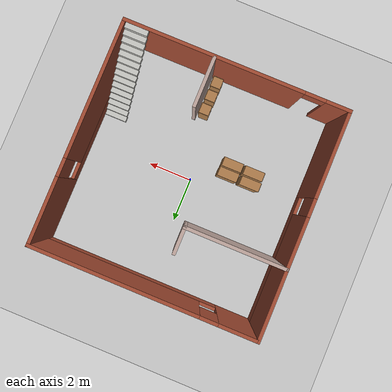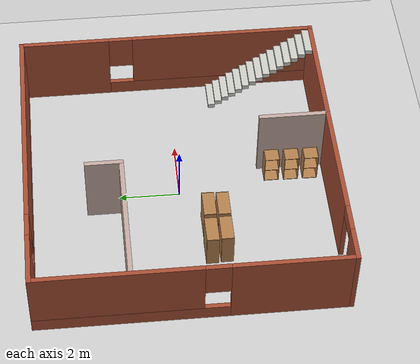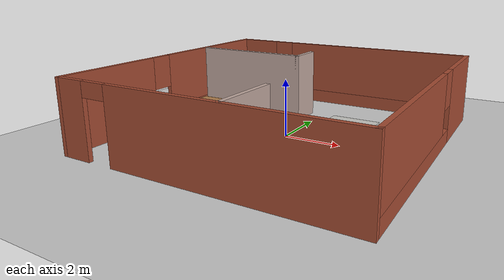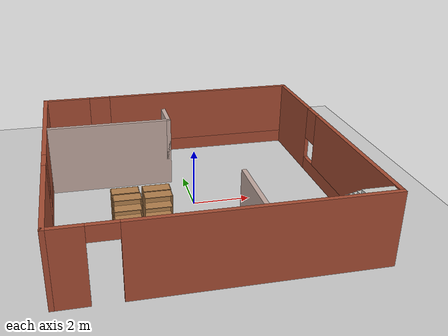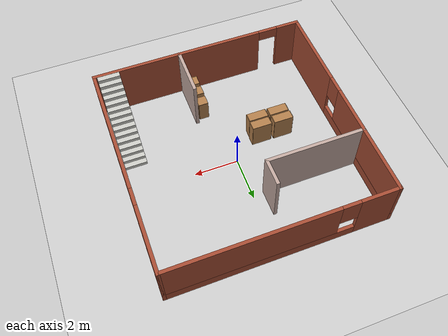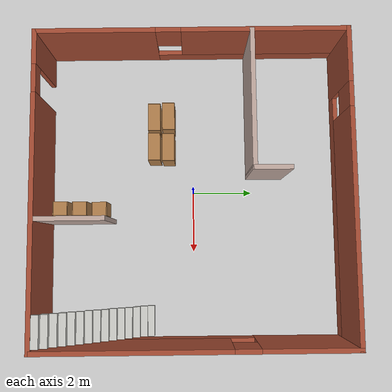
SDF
<sdf version="1.6">
 <world name="default">
  <light name="sun" type="directional">
   <pose>100 0 10 0 -0 0</pose>
   <diffuse>0.8 0.8 0.8 1</diffuse>
   <specular>0.1 0.1 0.1 1</specular>
   <attenuation>
    <range>1000</range>
    <constant>0.9</constant>
    <linear>0.01</linear>
    <quadratic>0.001</quadratic>
   </attenuation>
   <direction>-0.5 0.5 -1</direction>
  </light>
  <model name="ground_plane">
   <static>1</static>
   <link name="link">
    <collision name="collision">
     <geometry><plane><normal>0 0 1</normal><size>100 100</size></plane></geometry>
     <surface><friction><ode><mu>100</mu><mu2>50</mu2></ode></friction></surface>
    </collision>
    <visual name="visual">
     <cast_shadows>0</cast_shadows>
     <geometry><plane><normal>0 0 1</normal><size>100 100</size></plane></geometry>
     <material>
      <script><uri>file://media/materials/scripts/gazebo.material</uri><name>Gazebo/Grey</name></script>
     </material>
    </visual>
   </link>
  </model>
  <gravity>0 0 -9.8</gravity>
  <magnetic_field>6e-06 2.3e-05 -4.2e-05</magnetic_field>
  <atmosphere type="adiabatic"/>
  <physics name="default_physics" default="0" type="ode">
   <max_step_size>0.001</max_step_size>
   <real_time_factor>1</real_time_factor>
   <real_time_update_rate>2000</real_time_update_rate>
  </physics>
  <scene><ambient>0.4 0.4 0.4 1</ambient><background>0.7 0.7 0.7 1</background><shadows>0</shadows></scene>
  <spherical_coordinates>
   <surface_model>EARTH_WGS84</surface_model>
   <latitude_deg>0</latitude_deg>
   <longitude_deg>0</longitude_deg>
   <elevation>0</elevation>
   <heading_deg>0</heading_deg>
  </spherical_coordinates>
  <model name="house2">
   <pose>-0.000158 0.001701 0 0 -0 0</pose>
   <link name="Stairs_0">
    <visual name="Stairs_0_Visual_0">
     <pose>4.30411 -1.46435 0.083333 0 -0 0</pose>
     <geometry><box><size>1 0.233333 0.166667</size></box></geometry>
     <material>
      <script><uri>file://media/materials/scripts/gazebo.material</uri><name>Gazebo/CeilingTiled</name></script>
      <ambient>1 1 1 1</ambient>
     </material>
    </visual>
    <collision name="Stairs_0_Collision_0">
     <geometry><box><size>1 0.233333 0.166667</size></box></geometry>
     <pose>4.30411 -1.46435 0.083333 0 -0 0</pose>
    </collision>
    <visual name="Stairs_0_Visual_1">
     <pose>4.30411 -1.69768 0.25 0 -0 0</pose>
     <geometry><box><size>1 0.233333 0.166667</size></box></geometry>
     <material>
      <script><uri>file://media/materials/scripts/gazebo.material</uri><name>Gazebo/CeilingTiled</name></script>
      <ambient>1 1 1 1</ambient>
     </material>
    </visual>
    <collision name="Stairs_0_Collision_1">
     <geometry><box><size>1 0.233333 0.166667</size></box></geometry>
     <pose>4.30411 -1.69768 0.25 0 -0 0</pose>
    </collision>
    <visual name="Stairs_0_Visual_2">
     <pose>4.30411 -1.93101 0.416667 0 -0 0</pose>
     <geometry><box><size>1 0.233333 0.166667</size></box></geometry>
     <material>
      <script><uri>file://media/materials/scripts/gazebo.material</uri><name>Gazebo/CeilingTiled</name></script>
      <ambient>1 1 1 1</ambient>
     </material>
    </visual>
    <collision name="Stairs_0_Collision_2">
     <geometry><box><size>1 0.233333 0.166667</size></box></geometry>
     <pose>4.30411 -1.93101 0.416667 0 -0 0</pose>
    </collision>
    <visual name="Stairs_0_Visual_3">
     <pose>4.30411 -2.16435 0.583333 0 -0 0</pose>
     <geometry><box><size>1 0.233333 0.166667</size></box></geometry>
     <material>
      <script><uri>file://media/materials/scripts/gazebo.material</uri><name>Gazebo/CeilingTiled</name></script>
      <ambient>1 1 1 1</ambient>
     </material>
    </visual>
    <collision name="Stairs_0_Collision_3">
     <geometry><box><size>1 0.233333 0.166667</size></box></geometry>
     <pose>4.30411 -2.16435 0.583333 0 -0 0</pose>
    </collision>
    <visual name="Stairs_0_Visual_4">
     <pose>4.30411 -2.39768 0.75 0 -0 0</pose>
     <geometry><box><size>1 0.233333 0.166667</size></box></geometry>
     <material>
      <script><uri>file://media/materials/scripts/gazebo.material</uri><name>Gazebo/CeilingTiled</name></script>
      <ambient>1 1 1 1</ambient>
     </material>
    </visual>
    <collision name="Stairs_0_Collision_4">
     <geometry><box><size>1 0.233333 0.166667</size></box></geometry>
     <pose>4.30411 -2.39768 0.75 0 -0 0</pose>
    </collision>
    <visual name="Stairs_0_Visual_5">
     <pose>4.30411 -2.63102 0.916667 0 -0 0</pose>
     <geometry><box><size>1 0.233333 0.166667</size></box></geometry>
     <material>
      <script><uri>file://media/materials/scripts/gazebo.material</uri><name>Gazebo/CeilingTiled</name></script>
      <ambient>1 1 1 1</ambient>
     </material>
    </visual>
    <collision name="Stairs_0_Collision_5">
     <geometry><box><size>1 0.233333 0.166667</size></box></geometry>
     <pose>4.30411 -2.63102 0.916667 0 -0 0</pose>
    </collision>
    <visual name="Stairs_0_Visual_6">
     <pose>4.30411 -2.86435 1.08333 0 -0 0</pose>
     <geometry><box><size>1 0.233333 0.166667</size></box></geometry>
     <material>
      <script><uri>file://media/materials/scripts/gazebo.material</uri><name>Gazebo/CeilingTiled</name></script>
      <ambient>1 1 1 1</ambient>
     </material>
    </visual>
    <collision name="Stairs_0_Collision_6">
     <geometry><box><size>1 0.233333 0.166667</size></box></geometry>
     <pose>4.30411 -2.86435 1.08333 0 -0 0</pose>
    </collision>
    <visual name="Stairs_0_Visual_7">
     <pose>4.30411 -3.09768 1.25 0 -0 0</pose>
     <geometry><box><size>1 0.233333 0.166667</size></box></geometry>
     <material>
      <script><uri>file://media/materials/scripts/gazebo.material</uri><name>Gazebo/CeilingTiled</name></script>
      <ambient>1 1 1 1</ambient>
     </material>
    </visual>
    <collision name="Stairs_0_Collision_7">
     <geometry><box><size>1 0.233333 0.166667</size></box></geometry>
     <pose>4.30411 -3.09768 1.25 0 -0 0</pose>
    </collision>
    <visual name="Stairs_0_Visual_8">
     <pose>4.30411 -3.33102 1.41667 0 -0 0</pose>
     <geometry><box><size>1 0.233333 0.166667</size></box></geometry>
     <material>
      <script><uri>file://media/materials/scripts/gazebo.material</uri><name>Gazebo/CeilingTiled</name></script>
      <ambient>1 1 1 1</ambient>
     </material>
    </visual>
    <collision name="Stairs_0_Collision_8">
     <geometry><box><size>1 0.233333 0.166667</size></box></geometry>
     <pose>4.30411 -3.33102 1.41667 0 -0 0</pose>
    </collision>
    <visual name="Stairs_0_Visual_9">
     <pose>4.30411 -3.56435 1.58333 0 -0 0</pose>
     <geometry><box><size>1 0.233333 0.166667</size></box></geometry>
     <material>
      <script><uri>file://media/materials/scripts/gazebo.material</uri><name>Gazebo/CeilingTiled</name></script>
      <ambient>1 1 1 1</ambient>
     </material>
    </visual>
    <collision name="Stairs_0_Collision_9">
     <geometry><box><size>1 0.233333 0.166667</size></box></geometry>
     <pose>4.30411 -3.56435 1.58333 0 -0 0</pose>
    </collision>
    <visual name="Stairs_0_Visual_10">
     <pose>4.30411 -3.79768 1.75 0 -0 0</pose>
     <geometry><box><size>1 0.233333 0.166667</size></box></geometry>
     <material>
      <script><uri>file://media/materials/scripts/gazebo.material</uri><name>Gazebo/CeilingTiled</name></script>
      <ambient>1 1 1 1</ambient>
     </material>
    </visual>
    <collision name="Stairs_0_Collision_10">
     <geometry><box><size>1 0.233333 0.166667</size></box></geometry>
     <pose>4.30411 -3.79768 1.75 0 -0 0</pose>
    </collision>
    <visual name="Stairs_0_Visual_11">
     <pose>4.30411 -4.03102 1.91667 0 -0 0</pose>
     <geometry><box><size>1 0.233333 0.166667</size></box></geometry>
     <material>
      <script><uri>file://media/materials/scripts/gazebo.material</uri><name>Gazebo/CeilingTiled</name></script>
      <ambient>1 1 1 1</ambient>
     </material>
    </visual>
    <collision name="Stairs_0_Collision_11">
     <geometry><box><size>1 0.233333 0.166667</size></box></geometry>
     <pose>4.30411 -4.03102 1.91667 0 -0 0</pose>
    </collision>
    <visual name="Stairs_0_Visual_12">
     <pose>4.30411 -4.26435 2.08333 0 -0 0</pose>
     <geometry><box><size>1 0.233333 0.166667</size></box></geometry>
     <material>
      <script><uri>file://media/materials/scripts/gazebo.material</uri><name>Gazebo/CeilingTiled</name></script>
      <ambient>1 1 1 1</ambient>
     </material>
    </visual>
    <collision name="Stairs_0_Collision_12">
     <geometry><box><size>1 0.233333 0.166667</size></box></geometry>
     <pose>4.30411 -4.26435 2.08333 0 -0 0</pose>
    </collision>
    <visual name="Stairs_0_Visual_13">
     <pose>4.30411 -4.49768 2.25 0 -0 0</pose>
     <geometry><box><size>1 0.233333 0.166667</size></box></geometry>
     <material>
      <script><uri>file://media/materials/scripts/gazebo.material</uri><name>Gazebo/CeilingTiled</name></script>
      <ambient>1 1 1 1</ambient>
     </material>
    </visual>
    <collision name="Stairs_0_Collision_13">
     <geometry><box><size>1 0.233333 0.166667</size></box></geometry>
     <pose>4.30411 -4.49768 2.25 0 -0 0</pose>
    </collision>
    <visual name="Stairs_0_Visual_14">
     <pose>4.30411 -4.73102 2.41667 0 -0 0</pose>
     <geometry><box><size>1 0.233333 0.166667</size></box></geometry>
     <material>
      <script><uri>file://media/materials/scripts/gazebo.material</uri><name>Gazebo/CeilingTiled</name></script>
      <ambient>1 1 1 1</ambient>
     </material>
    </visual>
    <collision name="Stairs_0_Collision_14">
     <geometry><box><size>1 0.233333 0.166667</size></box></geometry>
     <pose>4.30411 -4.73102 2.41667 0 -0 0</pose>
    </collision>
   </link>
   <link name="Wall_1">
    <pose>-4.925 0 0 0 -0 1.5708</pose>
    <visual name="Wall_1_Visual_0">
     <pose>-3.06918 0 1.25 0 -0 0</pose>
     <geometry><box><size>3.86164 0.15 2.5</size></box></geometry>
     <material>
      <script><uri>file://media/materials/scripts/gazebo.material</uri><name>Gazebo/Bricks</name></script>
      <ambient>1 1 1 1</ambient>
     </material>
    </visual>
    <collision name="Wall_1_Collision_0">
     <geometry><box><size>3.86164 0.15 2.5</size></box></geometry>
     <pose>-3.06918 0 1.25 0 -0 0</pose>
    </collision>
    <visual name="Wall_1_Visual_1">
     <pose>1.93082 0 0.25 0 -0 0</pose>
     <geometry><box><size>6.13836 0.15 0.5</size></box></geometry>
     <material>
      <script><uri>file://media/materials/scripts/gazebo.material</uri><name>Gazebo/Bricks</name></script>
      <ambient>1 1 1 1</ambient>
     </material>
    </visual>
    <collision name="Wall_1_Collision_1">
     <geometry><box><size>6.13836 0.15 0.5</size></box></geometry>
     <pose>1.93082 0 0.25 0 -0 0</pose>
    </collision>
    <visual name="Wall_1_Visual_2">
     <pose>2.33082 0 1.5 0 -0 0</pose>
     <geometry><box><size>5.33836 0.15 2</size></box></geometry>
     <material>
      <script><uri>file://media/materials/scripts/gazebo.material</uri><name>Gazebo/Bricks</name></script>
      <ambient>1 1 1 1</ambient>
     </material>
    </visual>
    <collision name="Wall_1_Collision_2">
     <geometry><box><size>5.33836 0.15 2</size></box></geometry>
     <pose>2.33082 0 1.5 0 -0 0</pose>
    </collision>
    <visual name="Wall_1_Visual_3">
     <pose>-0.73836 0 1.9 0 -0 0</pose>
     <geometry><box><size>0.8 0.15 1.2</size></box></geometry>
     <material>
      <script><uri>file://media/materials/scripts/gazebo.material</uri><name>Gazebo/Bricks</name></script>
      <ambient>1 1 1 1</ambient>
     </material>
    </visual>
    <collision name="Wall_1_Collision_3">
     <geometry><box><size>0.8 0.15 1.2</size></box></geometry>
     <pose>-0.73836 0 1.9 0 -0 0</pose>
    </collision>
   </link>
   <link name="Wall_2">
    <pose>0 4.925 0 0 -0 0</pose>
    <visual name="Wall_2_Visual_0">
     <pose>-4.11006 0 1.25 0 -0 0</pose>
     <geometry><box><size>1.77988 0.15 2.5</size></box></geometry>
     <material>
      <script><uri>file://media/materials/scripts/gazebo.material</uri><name>Gazebo/Bricks</name></script>
      <ambient>1 1 1 1</ambient>
     </material>
    </visual>
    <collision name="Wall_2_Collision_0">
     <geometry><box><size>1.77988 0.15 2.5</size></box></geometry>
     <pose>-4.11006 0 1.25 0 -0 0</pose>
    </collision>
    <visual name="Wall_2_Visual_1">
     <pose>0.889943 0 0.25 0 -0 0</pose>
     <geometry><box><size>8.22011 0.15 0.5</size></box></geometry>
     <material>
      <script><uri>file://media/materials/scripts/gazebo.material</uri><name>Gazebo/Bricks</name></script>
      <ambient>1 1 1 1</ambient>
     </material>
    </visual>
    <collision name="Wall_2_Collision_1">
     <geometry><box><size>8.22011 0.15 0.5</size></box></geometry>
     <pose>0.889943 0 0.25 0 -0 0</pose>
    </collision>
    <visual name="Wall_2_Visual_2">
     <pose>1.28994 0 1.5 0 -0 0</pose>
     <geometry><box><size>7.42012 0.15 2</size></box></geometry>
     <material>
      <script><uri>file://media/materials/scripts/gazebo.material</uri><name>Gazebo/Bricks</name></script>
      <ambient>1 1 1 1</ambient>
     </material>
    </visual>
    <collision name="Wall_2_Collision_2">
     <geometry><box><size>7.42012 0.15 2</size></box></geometry>
     <pose>1.28994 0 1.5 0 -0 0</pose>
    </collision>
    <visual name="Wall_2_Visual_3">
     <pose>-2.82011 0 1.9 0 -0 0</pose>
     <geometry><box><size>0.8 0.15 1.2</size></box></geometry>
     <material>
      <script><uri>file://media/materials/scripts/gazebo.material</uri><name>Gazebo/Bricks</name></script>
      <ambient>1 1 1 1</ambient>
     </material>
    </visual>
    <collision name="Wall_2_Collision_3">
     <geometry><box><size>0.8 0.15 1.2</size></box></geometry>
     <pose>-2.82011 0 1.9 0 -0 0</pose>
    </collision>
   </link>
   <link name="Wall_3">
    <pose>4.925 0 0 0 0 -1.5708</pose>
    <visual name="Wall_3_Visual_0">
     <pose>-3.48735 0 1.25 0 -0 0</pose>
     <geometry><box><size>3.0253 0.15 2.5</size></box></geometry>
     <material>
      <script><uri>file://media/materials/scripts/gazebo.material</uri><name>Gazebo/Bricks</name></script>
      <ambient>1 1 1 1</ambient>
     </material>
    </visual>
    <collision name="Wall_3_Collision_0">
     <geometry><box><size>3.0253 0.15 2.5</size></box></geometry>
     <pose>-3.48735 0 1.25 0 -0 0</pose>
    </collision>
    <visual name="Wall_3_Visual_1">
     <pose>1.51265 0 0.25 0 -0 0</pose>
     <geometry><box><size>6.9747 0.15 0.5</size></box></geometry>
     <material>
      <script><uri>file://media/materials/scripts/gazebo.material</uri><name>Gazebo/Bricks</name></script>
      <ambient>1 1 1 1</ambient>
     </material>
    </visual>
    <collision name="Wall_3_Collision_1">
     <geometry><box><size>6.9747 0.15 0.5</size></box></geometry>
     <pose>1.51265 0 0.25 0 -0 0</pose>
    </collision>
    <visual name="Wall_3_Visual_2">
     <pose>1.91265 0 1.5 0 -0 0</pose>
     <geometry><box><size>6.1747 0.15 2</size></box></geometry>
     <material>
      <script><uri>file://media/materials/scripts/gazebo.material</uri><name>Gazebo/Bricks</name></script>
      <ambient>1 1 1 1</ambient>
     </material>
    </visual>
    <collision name="Wall_3_Collision_2">
     <geometry><box><size>6.1747 0.15 2</size></box></geometry>
     <pose>1.91265 0 1.5 0 -0 0</pose>
    </collision>
    <visual name="Wall_3_Visual_3">
     <pose>-1.5747 0 1.9 0 -0 0</pose>
     <geometry><box><size>0.8 0.15 1.2</size></box></geometry>
     <material>
      <script><uri>file://media/materials/scripts/gazebo.material</uri><name>Gazebo/Bricks</name></script>
      <ambient>1 1 1 1</ambient>
     </material>
    </visual>
    <collision name="Wall_3_Collision_3">
     <geometry><box><size>0.8 0.15 1.2</size></box></geometry>
     <pose>-1.5747 0 1.9 0 -0 0</pose>
    </collision>
   </link>
   <link name="Wall_4">
    <pose>0 -4.925 0 0 -0 3.14159</pose>
    <visual name="Wall_4_Visual_0">
     <pose>-1.01425 0 1.25 0 -0 0</pose>
     <geometry><box><size>7.97151 0.15 2.5</size></box></geometry>
     <material>
      <script><uri>file://media/materials/scripts/gazebo.material</uri><name>Gazebo/Bricks</name></script>
      <ambient>1 1 1 1</ambient>
     </material>
    </visual>
    <collision name="Wall_4_Collision_0">
     <geometry><box><size>7.97151 0.15 2.5</size></box></geometry>
     <pose>-1.01425 0 1.25 0 -0 0</pose>
    </collision>
    <visual name="Wall_4_Visual_1">
     <pose>4.43576 0 1.25 0 -0 0</pose>
     <geometry><box><size>1.12849 0.15 2.5</size></box></geometry>
     <material>
      <script><uri>file://media/materials/scripts/gazebo.material</uri><name>Gazebo/Bricks</name></script>
      <ambient>1 1 1 1</ambient>
     </material>
    </visual>
    <collision name="Wall_4_Collision_1">
     <geometry><box><size>1.12849 0.15 2.5</size></box></geometry>
     <pose>4.43576 0 1.25 0 -0 0</pose>
    </collision>
    <visual name="Wall_4_Visual_2">
     <pose>3.42151 0 2.25 0 -0 0</pose>
     <geometry><box><size>0.9 0.15 0.5</size></box></geometry>
     <material>
      <script><uri>file://media/materials/scripts/gazebo.material</uri><name>Gazebo/Bricks</name></script>
      <ambient>1 1 1 1</ambient>
     </material>
    </visual>
    <collision name="Wall_4_Collision_2">
     <geometry><box><size>0.9 0.15 0.5</size></box></geometry>
     <pose>3.42151 0 2.25 0 -0 0</pose>
    </collision>
   </link>
   <link name="Wall_6">
    <collision name="Wall_6_Collision">
     <geometry><box><size>4.5 0.15 2.5</size></box></geometry>
     <pose>0 0 1.25 0 -0 0</pose>
    </collision>
    <visual name="Wall_6_Visual">
     <pose>0 0 1.25 0 -0 0</pose>
     <geometry><box><size>4.5 0.15 2.5</size></box></geometry>
     <material>
      <script><uri>file://media/materials/scripts/gazebo.material</uri><name>Gazebo/Grey</name></script>
      <ambient>0.760784 0.662745 0.627451 1</ambient>
     </material>
    </visual>
    <pose>-2.72687 1.89853 0 0 -0 0</pose>
   </link>
   <link name="Wall_7">
    <collision name="Wall_7_Collision">
     <geometry><box><size>1.25 0.15 2.5</size></box></geometry>
     <pose>0 0 1.25 0 -0 0</pose>
    </collision>
    <visual name="Wall_7_Visual">
     <pose>0 0 1.25 0 -0 0</pose>
     <geometry><box><size>1.25 0.15 2.5</size></box></geometry>
     <material>
      <script><uri>file://media/materials/scripts/gazebo.material</uri><name>Gazebo/Grey</name></script>
      <ambient>0.760784 0.662745 0.627451 1</ambient>
     </material>
    </visual>
    <pose>-0.551869 2.44853 0 0 -0 1.5708</pose>
   </link>
   <link name="Wall_9">
    <collision name="Wall_9_Collision">
     <geometry><box><size>2.25 0.15 2.5</size></box></geometry>
     <pose>0 0 1.25 0 -0 0</pose>
    </collision>
    <visual name="Wall_9_Visual">
     <pose>0 0 1.25 0 -0 0</pose>
     <geometry><box><size>2.25 0.15 2.5</size></box></geometry>
     <material>
      <script><uri>file://media/materials/scripts/gazebo.material</uri><name>Gazebo/Grey</name></script>
      <ambient>0.760784 0.662745 0.627451 1</ambient>
     </material>
    </visual>
    <pose>0.950175 -3.80561 0 0 -0 1.5708</pose>
   </link>
   <static>1</static>
  </model>
  <model name="bookshelf">
   <static>1</static>
   <link name="link">
    <inertial><mass>1</mass></inertial>
    <collision name="back">
     <pose>0 0.005 0.6 0 -0 0</pose>
     <geometry><box><size>0.9 0.01 1.2</size></box></geometry>
    </collision>
    <visual name="visual1">
     <pose>0 0.005 0.6 0 -0 0</pose>
     <geometry><box><size>0.9 0.01 1.2</size></box></geometry>
     <material>
      <script><uri>file://media/materials/scripts/gazebo.material</uri><name>Gazebo/Wood</name></script>
     </material>
    </visual>
    <collision name="left_side">
     <pose>0.45 -0.195 0.6 0 -0 0</pose>
     <geometry><box><size>0.02 0.4 1.2</size></box></geometry>
    </collision>
    <visual name="visual2">
     <pose>0.45 -0.195 0.6 0 -0 0</pose>
     <geometry><box><size>0.02 0.4 1.2</size></box></geometry>
     <material>
      <script><uri>file://media/materials/scripts/gazebo.material</uri><name>Gazebo/Wood</name></script>
     </material>
    </visual>
    <collision name="right_side">
     <pose>-0.45 -0.195 0.6 0 -0 0</pose>
     <geometry><box><size>0.02 0.4 1.2</size></box></geometry>
    </collision>
    <visual name="visual3">
     <pose>-0.45 -0.195 0.6 0 -0 0</pose>
     <geometry><box><size>0.02 0.4 1.2</size></box></geometry>
     <material>
      <script><uri>file://media/materials/scripts/gazebo.material</uri><name>Gazebo/Wood</name></script>
     </material>
    </visual>
    <collision name="bottom">
     <pose>0 -0.195 0.03 0 -0 0</pose>
     <geometry><box><size>0.88 0.4 0.06</size></box></geometry>
    </collision>
    <visual name="visual4">
     <pose>0 -0.195 0.03 0 -0 0</pose>
     <geometry><box><size>0.88 0.4 0.06</size></box></geometry>
     <material>
      <script><uri>file://media/materials/scripts/gazebo.material</uri><name>Gazebo/Wood</name></script>
     </material>
    </visual>
    <collision name="top">
     <pose>0 -0.195 1.19 0 -0 0</pose>
     <geometry><box><size>0.88 0.4 0.02</size></box></geometry>
    </collision>
    <visual name="visual5">
     <pose>0 -0.195 1.19 0 -0 0</pose>
     <geometry><box><size>0.88 0.4 0.02</size></box></geometry>
     <material>
      <script><uri>file://media/materials/scripts/gazebo.material</uri><name>Gazebo/Wood</name></script>
     </material>
    </visual>
    <collision name="low_shelf">
     <pose>0 -0.195 0.43 0 -0 0</pose>
     <geometry><box><size>0.88 0.4 0.02</size></box></geometry>
    </collision>
    <visual name="visual6">
     <pose>0 -0.195 0.43 0 -0 0</pose>
     <geometry><box><size>0.88 0.4 0.02</size></box></geometry>
     <material>
      <script><uri>file://media/materials/scripts/gazebo.material</uri><name>Gazebo/Wood</name></script>
     </material>
    </visual>
    <collision name="high_shelf">
     <pose>0 -0.195 0.8 0 -0 0</pose>
     <geometry><box><size>0.88 0.4 0.02</size></box></geometry>
    </collision>
    <visual name="visual7">
     <pose>0 -0.195 0.8 0 -0 0</pose>
     <geometry><box><size>0.88 0.4 0.02</size></box></geometry>
     <material>
      <script><uri>file://media/materials/scripts/gazebo.material</uri><name>Gazebo/Wood</name></script>
     </material>
    </visual>
   </link>
   <pose>-2.45951 -1.07623 0 0 -0 0</pose>
  </model>
  <model name="bookshelf_0">
   <static>1</static>
   <link name="link">
    <inertial><mass>1</mass></inertial>
    <collision name="back">
     <pose>0 0.005 0.6 0 -0 0</pose>
     <geometry><box><size>0.9 0.01 1.2</size></box></geometry>
    </collision>
    <visual name="visual1">
     <pose>0 0.005 0.6 0 -0 0</pose>
     <geometry><box><size>0.9 0.01 1.2</size></box></geometry>
     <material>
      <script><uri>file://media/materials/scripts/gazebo.material</uri><name>Gazebo/Wood</name></script>
     </material>
    </visual>
    <collision name="left_side">
     <pose>0.45 -0.195 0.6 0 -0 0</pose>
     <geometry><box><size>0.02 0.4 1.2</size></box></geometry>
    </collision>
    <visual name="visual2">
     <pose>0.45 -0.195 0.6 0 -0 0</pose>
     <geometry><box><size>0.02 0.4 1.2</size></box></geometry>
     <material>
      <script><uri>file://media/materials/scripts/gazebo.material</uri><name>Gazebo/Wood</name></script>
     </material>
    </visual>
    <collision name="right_side">
     <pose>-0.45 -0.195 0.6 0 -0 0</pose>
     <geometry><box><size>0.02 0.4 1.2</size></box></geometry>
    </collision>
    <visual name="visual3">
     <pose>-0.45 -0.195 0.6 0 -0 0</pose>
     <geometry><box><size>0.02 0.4 1.2</size></box></geometry>
     <material>
      <script><uri>file://media/materials/scripts/gazebo.material</uri><name>Gazebo/Wood</name></script>
     </material>
    </visual>
    <collision name="bottom">
     <pose>0 -0.195 0.03 0 -0 0</pose>
     <geometry><box><size>0.88 0.4 0.06</size></box></geometry>
    </collision>
    <visual name="visual4">
     <pose>0 -0.195 0.03 0 -0 0</pose>
     <geometry><box><size>0.88 0.4 0.06</size></box></geometry>
     <material>
      <script><uri>file://media/materials/scripts/gazebo.material</uri><name>Gazebo/Wood</name></script>
     </material>
    </visual>
    <collision name="top">
     <pose>0 -0.195 1.19 0 -0 0</pose>
     <geometry><box><size>0.88 0.4 0.02</size></box></geometry>
    </collision>
    <visual name="visual5">
     <pose>0 -0.195 1.19 0 -0 0</pose>
     <geometry><box><size>0.88 0.4 0.02</size></box></geometry>
     <material>
      <script><uri>file://media/materials/scripts/gazebo.material</uri><name>Gazebo/Wood</name></script>
     </material>
    </visual>
    <collision name="low_shelf">
     <pose>0 -0.195 0.43 0 -0 0</pose>
     <geometry><box><size>0.88 0.4 0.02</size></box></geometry>
    </collision>
    <visual name="visual6">
     <pose>0 -0.195 0.43 0 -0 0</pose>
     <geometry><box><size>0.88 0.4 0.02</size></box></geometry>
     <material>
      <script><uri>file://media/materials/scripts/gazebo.material</uri><name>Gazebo/Wood</name></script>
     </material>
    </visual>
    <collision name="high_shelf">
     <pose>0 -0.195 0.8 0 -0 0</pose>
     <geometry><box><size>0.88 0.4 0.02</size></box></geometry>
    </collision>
    <visual name="visual7">
     <pose>0 -0.195 0.8 0 -0 0</pose>
     <geometry><box><size>0.88 0.4 0.02</size></box></geometry>
     <material>
      <script><uri>file://media/materials/scripts/gazebo.material</uri><name>Gazebo/Wood</name></script>
     </material>
    </visual>
   </link>
   <pose>-2.48118 -0.605858 0 0 -0 0</pose>
  </model>
  <model name="bookshelf_1">
   <static>1</static>
   <link name="link">
    <inertial><mass>1</mass></inertial>
    <collision name="back">
     <pose>0 0.005 0.6 0 -0 0</pose>
     <geometry><box><size>0.9 0.01 1.2</size></box></geometry>
    </collision>
    <visual name="visual1">
     <pose>0 0.005 0.6 0 -0 0</pose>
     <geometry><box><size>0.9 0.01 1.2</size></box></geometry>
     <material>
      <script><uri>file://media/materials/scripts/gazebo.material</uri><name>Gazebo/Wood</name></script>
     </material>
    </visual>
    <collision name="left_side">
     <pose>0.45 -0.195 0.6 0 -0 0</pose>
     <geometry><box><size>0.02 0.4 1.2</size></box></geometry>
    </collision>
    <visual name="visual2">
     <pose>0.45 -0.195 0.6 0 -0 0</pose>
     <geometry><box><size>0.02 0.4 1.2</size></box></geometry>
     <material>
      <script><uri>file://media/materials/scripts/gazebo.material</uri><name>Gazebo/Wood</name></script>
     </material>
    </visual>
    <collision name="right_side">
     <pose>-0.45 -0.195 0.6 0 -0 0</pose>
     <geometry><box><size>0.02 0.4 1.2</size></box></geometry>
    </collision>
    <visual name="visual3">
     <pose>-0.45 -0.195 0.6 0 -0 0</pose>
     <geometry><box><size>0.02 0.4 1.2</size></box></geometry>
     <material>
      <script><uri>file://media/materials/scripts/gazebo.material</uri><name>Gazebo/Wood</name></script>
     </material>
    </visual>
    <collision name="bottom">
     <pose>0 -0.195 0.03 0 -0 0</pose>
     <geometry><box><size>0.88 0.4 0.06</size></box></geometry>
    </collision>
    <visual name="visual4">
     <pose>0 -0.195 0.03 0 -0 0</pose>
     <geometry><box><size>0.88 0.4 0.06</size></box></geometry>
     <material>
      <script><uri>file://media/materials/scripts/gazebo.material</uri><name>Gazebo/Wood</name></script>
     </material>
    </visual>
    <collision name="top">
     <pose>0 -0.195 1.19 0 -0 0</pose>
     <geometry><box><size>0.88 0.4 0.02</size></box></geometry>
    </collision>
    <visual name="visual5">
     <pose>0 -0.195 1.19 0 -0 0</pose>
     <geometry><box><size>0.88 0.4 0.02</size></box></geometry>
     <material>
      <script><uri>file://media/materials/scripts/gazebo.material</uri><name>Gazebo/Wood</name></script>
     </material>
    </visual>
    <collision name="low_shelf">
     <pose>0 -0.195 0.43 0 -0 0</pose>
     <geometry><box><size>0.88 0.4 0.02</size></box></geometry>
    </collision>
    <visual name="visual6">
     <pose>0 -0.195 0.43 0 -0 0</pose>
     <geometry><box><size>0.88 0.4 0.02</size></box></geometry>
     <material>
      <script><uri>file://media/materials/scripts/gazebo.material</uri><name>Gazebo/Wood</name></script>
     </material>
    </visual>
    <collision name="high_shelf">
     <pose>0 -0.195 0.8 0 -0 0</pose>
     <geometry><box><size>0.88 0.4 0.02</size></box></geometry>
    </collision>
    <visual name="visual7">
     <pose>0 -0.195 0.8 0 -0 0</pose>
     <geometry><box><size>0.88 0.4 0.02</size></box></geometry>
     <material>
      <script><uri>file://media/materials/scripts/gazebo.material</uri><name>Gazebo/Wood</name></script>
     </material>
    </visual>
   </link>
   <pose>-1.46833 -1.0848 0 0 -0 0</pose>
  </model>
  <model name="bookshelf_2">
   <static>1</static>
   <link name="link">
    <inertial><mass>1</mass></inertial>
    <collision name="back">
     <pose>0 0.005 0.6 0 -0 0</pose>
     <geometry><box><size>0.9 0.01 1.2</size></box></geometry>
    </collision>
    <visual name="visual1">
     <pose>0 0.005 0.6 0 -0 0</pose>
     <geometry><box><size>0.9 0.01 1.2</size></box></geometry>
     <material>
      <script><uri>file://media/materials/scripts/gazebo.material</uri><name>Gazebo/Wood</name></script>
     </material>
    </visual>
    <collision name="left_side">
     <pose>0.45 -0.195 0.6 0 -0 0</pose>
     <geometry><box><size>0.02 0.4 1.2</size></box></geometry>
    </collision>
    <visual name="visual2">
     <pose>0.45 -0.195 0.6 0 -0 0</pose>
     <geometry><box><size>0.02 0.4 1.2</size></box></geometry>
     <material>
      <script><uri>file://media/materials/scripts/gazebo.material</uri><name>Gazebo/Wood</name></script>
     </material>
    </visual>
    <collision name="right_side">
     <pose>-0.45 -0.195 0.6 0 -0 0</pose>
     <geometry><box><size>0.02 0.4 1.2</size></box></geometry>
    </collision>
    <visual name="visual3">
     <pose>-0.45 -0.195 0.6 0 -0 0</pose>
     <geometry><box><size>0.02 0.4 1.2</size></box></geometry>
     <material>
      <script><uri>file://media/materials/scripts/gazebo.material</uri><name>Gazebo/Wood</name></script>
     </material>
    </visual>
    <collision name="bottom">
     <pose>0 -0.195 0.03 0 -0 0</pose>
     <geometry><box><size>0.88 0.4 0.06</size></box></geometry>
    </collision>
    <visual name="visual4">
     <pose>0 -0.195 0.03 0 -0 0</pose>
     <geometry><box><size>0.88 0.4 0.06</size></box></geometry>
     <material>
      <script><uri>file://media/materials/scripts/gazebo.material</uri><name>Gazebo/Wood</name></script>
     </material>
    </visual>
    <collision name="top">
     <pose>0 -0.195 1.19 0 -0 0</pose>
     <geometry><box><size>0.88 0.4 0.02</size></box></geometry>
    </collision>
    <visual name="visual5">
     <pose>0 -0.195 1.19 0 -0 0</pose>
     <geometry><box><size>0.88 0.4 0.02</size></box></geometry>
     <material>
      <script><uri>file://media/materials/scripts/gazebo.material</uri><name>Gazebo/Wood</name></script>
     </material>
    </visual>
    <collision name="low_shelf">
     <pose>0 -0.195 0.43 0 -0 0</pose>
     <geometry><box><size>0.88 0.4 0.02</size></box></geometry>
    </collision>
    <visual name="visual6">
     <pose>0 -0.195 0.43 0 -0 0</pose>
     <geometry><box><size>0.88 0.4 0.02</size></box></geometry>
     <material>
      <script><uri>file://media/materials/scripts/gazebo.material</uri><name>Gazebo/Wood</name></script>
     </material>
    </visual>
    <collision name="high_shelf">
     <pose>0 -0.195 0.8 0 -0 0</pose>
     <geometry><box><size>0.88 0.4 0.02</size></box></geometry>
    </collision>
    <visual name="visual7">
     <pose>0 -0.195 0.8 0 -0 0</pose>
     <geometry><box><size>0.88 0.4 0.02</size></box></geometry>
     <material>
      <script><uri>file://media/materials/scripts/gazebo.material</uri><name>Gazebo/Wood</name></script>
     </material>
    </visual>
   </link>
   <pose>-1.44963 -0.620579 0 0 -0 0</pose>
  </model>
  <model name="cabinet">
   <static>1</static>
   <link name="cabinet_bottom_plate">
    <inertial>
     <pose>0 0 -1 0 -0 0</pose>
     <inertia><ixx>2.05</ixx><ixy>0</ixy><ixz>0</ixz><iyy>2.05</iyy><iyz>0</iyz><izz>2.05</izz></inertia>
     <mass>25</mass>
    </inertial>
    <collision name="cabinet_bottom_plate_geom">
     <pose>0 0 0.01 0 -0 0</pose>
     <geometry><box><size>0.45 0.45 0.02</size></box></geometry>
    </collision>
    <visual name="cabinet_bottom_plate_geom_visual">
     <pose>0 0 0.01 0 -0 0</pose>
     <geometry><box><size>0.45 0.45 0.02</size></box></geometry>
     <material>
      <script><uri>file://media/materials/scripts/gazebo.material</uri><name>Gazebo/Wood</name></script>
     </material>
    </visual>
    <collision name="cabinet_bottom_plate_geom_cabinet_back_plate">
     <pose>0.235 0 0.51 0 -0 0</pose>
     <geometry><box><size>0.02 0.45 1.02</size></box></geometry>
    </collision>
    <visual name="cabinet_bottom_plate_geom_cabinet_back_plate_visual">
     <pose>0.235 0 0.51 0 -0 0</pose>
     <geometry><box><size>0.02 0.45 1.02</size></box></geometry>
     <material>
      <script><uri>file://media/materials/scripts/gazebo.material</uri><name>Gazebo/Wood</name></script>
     </material>
    </visual>
    <collision name="cabinet_bottom_plate_geom_cabinet_left_plate">
     <pose>0 0.235 0.51 0 -0 0</pose>
     <geometry><box><size>0.45 0.02 1.02</size></box></geometry>
    </collision>
    <visual name="cabinet_bottom_plate_geom_cabinet_left_plate_visual">
     <pose>0 0.235 0.51 0 -0 0</pose>
     <geometry><box><size>0.45 0.02 1.02</size></box></geometry>
     <material>
      <script><uri>file://media/materials/scripts/gazebo.material</uri><name>Gazebo/Wood</name></script>
     </material>
    </visual>
    <collision name="cabinet_bottom_plate_geom_cabinet_middle_plate">
     <pose>0 0 0.51 0 -0 0</pose>
     <geometry><box><size>0.45 0.45 0.02</size></box></geometry>
    </collision>
    <visual name="cabinet_bottom_plate_geom_cabinet_middle_plate_visual">
     <pose>0 0 0.51 0 -0 0</pose>
     <geometry><box><size>0.45 0.45 0.02</size></box></geometry>
     <material>
      <script><uri>file://media/materials/scripts/gazebo.material</uri><name>Gazebo/Wood</name></script>
     </material>
    </visual>
    <collision name="cabinet_bottom_plate_geom_cabinet_right_plate">
     <pose>0 -0.235 0.51 0 -0 0</pose>
     <geometry><box><size>0.45 0.02 1.02</size></box></geometry>
    </collision>
    <visual name="cabinet_bottom_plate_geom_cabinet_right_plate_visual">
     <pose>0 -0.235 0.51 0 -0 0</pose>
     <geometry><box><size>0.45 0.02 1.02</size></box></geometry>
     <material>
      <script><uri>file://media/materials/scripts/gazebo.material</uri><name>Gazebo/Wood</name></script>
     </material>
    </visual>
    <collision name="cabinet_bottom_plate_geom_cabinet_top_plate">
     <pose>0 0 1.01 0 -0 0</pose>
     <geometry><box><size>0.45 0.45 0.02</size></box></geometry>
    </collision>
    <visual name="cabinet_bottom_plate_geom_cabinet_top_plate_visual">
     <pose>0 0 1.01 0 -0 0</pose>
     <geometry><box><size>0.45 0.45 0.02</size></box></geometry>
     <material>
      <script><uri>file://media/materials/scripts/gazebo.material</uri><name>Gazebo/Wood</name></script>
     </material>
    </visual>
   </link>
   <pose>0.536687 -4.39733 0 0 -0 0</pose>
  </model>
  <model name="cabinet_0">
   <static>1</static>
   <link name="cabinet_bottom_plate">
    <inertial>
     <pose>0 0 -1 0 -0 0</pose>
     <inertia><ixx>2.05</ixx><ixy>0</ixy><ixz>0</ixz><iyy>2.05</iyy><iyz>0</iyz><izz>2.05</izz></inertia>
     <mass>25</mass>
    </inertial>
    <collision name="cabinet_bottom_plate_geom">
     <pose>0 0 0.01 0 -0 0</pose>
     <geometry><box><size>0.45 0.45 0.02</size></box></geometry>
    </collision>
    <visual name="cabinet_bottom_plate_geom_visual">
     <pose>0 0 0.01 0 -0 0</pose>
     <geometry><box><size>0.45 0.45 0.02</size></box></geometry>
     <material>
      <script><uri>file://media/materials/scripts/gazebo.material</uri><name>Gazebo/Wood</name></script>
     </material>
    </visual>
    <collision name="cabinet_bottom_plate_geom_cabinet_back_plate">
     <pose>0.235 0 0.51 0 -0 0</pose>
     <geometry><box><size>0.02 0.45 1.02</size></box></geometry>
    </collision>
    <visual name="cabinet_bottom_plate_geom_cabinet_back_plate_visual">
     <pose>0.235 0 0.51 0 -0 0</pose>
     <geometry><box><size>0.02 0.45 1.02</size></box></geometry>
     <material>
      <script><uri>file://media/materials/scripts/gazebo.material</uri><name>Gazebo/Wood</name></script>
     </material>
    </visual>
    <collision name="cabinet_bottom_plate_geom_cabinet_left_plate">
     <pose>0 0.235 0.51 0 -0 0</pose>
     <geometry><box><size>0.45 0.02 1.02</size></box></geometry>
    </collision>
    <visual name="cabinet_bottom_plate_geom_cabinet_left_plate_visual">
     <pose>0 0.235 0.51 0 -0 0</pose>
     <geometry><box><size>0.45 0.02 1.02</size></box></geometry>
     <material>
      <script><uri>file://media/materials/scripts/gazebo.material</uri><name>Gazebo/Wood</name></script>
     </material>
    </visual>
    <collision name="cabinet_bottom_plate_geom_cabinet_middle_plate">
     <pose>0 0 0.51 0 -0 0</pose>
     <geometry><box><size>0.45 0.45 0.02</size></box></geometry>
    </collision>
    <visual name="cabinet_bottom_plate_geom_cabinet_middle_plate_visual">
     <pose>0 0 0.51 0 -0 0</pose>
     <geometry><box><size>0.45 0.45 0.02</size></box></geometry>
     <material>
      <script><uri>file://media/materials/scripts/gazebo.material</uri><name>Gazebo/Wood</name></script>
     </material>
    </visual>
    <collision name="cabinet_bottom_plate_geom_cabinet_right_plate">
     <pose>0 -0.235 0.51 0 -0 0</pose>
     <geometry><box><size>0.45 0.02 1.02</size></box></geometry>
    </collision>
    <visual name="cabinet_bottom_plate_geom_cabinet_right_plate_visual">
     <pose>0 -0.235 0.51 0 -0 0</pose>
     <geometry><box><size>0.45 0.02 1.02</size></box></geometry>
     <material>
      <script><uri>file://media/materials/scripts/gazebo.material</uri><name>Gazebo/Wood</name></script>
     </material>
    </visual>
    <collision name="cabinet_bottom_plate_geom_cabinet_top_plate">
     <pose>0 0 1.01 0 -0 0</pose>
     <geometry><box><size>0.45 0.45 0.02</size></box></geometry>
    </collision>
    <visual name="cabinet_bottom_plate_geom_cabinet_top_plate_visual">
     <pose>0 0 1.01 0 -0 0</pose>
     <geometry><box><size>0.45 0.45 0.02</size></box></geometry>
     <material>
      <script><uri>file://media/materials/scripts/gazebo.material</uri><name>Gazebo/Wood</name></script>
     </material>
    </visual>
   </link>
   <pose>0.54323 -3.7572 0 0 -0 0</pose>
  </model>
  <model name="cabinet_1">
   <static>1</static>
   <link name="cabinet_bottom_plate">
    <inertial>
     <pose>0 0 -1 0 -0 0</pose>
     <inertia><ixx>2.05</ixx><ixy>0</ixy><ixz>0</ixz><iyy>2.05</iyy><iyz>0</iyz><izz>2.05</izz></inertia>
     <mass>25</mass>
    </inertial>
    <collision name="cabinet_bottom_plate_geom">
     <pose>0 0 0.01 0 -0 0</pose>
     <geometry><box><size>0.45 0.45 0.02</size></box></geometry>
    </collision>
    <visual name="cabinet_bottom_plate_geom_visual">
     <pose>0 0 0.01 0 -0 0</pose>
     <geometry><box><size>0.45 0.45 0.02</size></box></geometry>
     <material>
      <script><uri>file://media/materials/scripts/gazebo.material</uri><name>Gazebo/Wood</name></script>
     </material>
    </visual>
    <collision name="cabinet_bottom_plate_geom_cabinet_back_plate">
     <pose>0.235 0 0.51 0 -0 0</pose>
     <geometry><box><size>0.02 0.45 1.02</size></box></geometry>
    </collision>
    <visual name="cabinet_bottom_plate_geom_cabinet_back_plate_visual">
     <pose>0.235 0 0.51 0 -0 0</pose>
     <geometry><box><size>0.02 0.45 1.02</size></box></geometry>
     <material>
      <script><uri>file://media/materials/scripts/gazebo.material</uri><name>Gazebo/Wood</name></script>
     </material>
    </visual>
    <collision name="cabinet_bottom_plate_geom_cabinet_left_plate">
     <pose>0 0.235 0.51 0 -0 0</pose>
     <geometry><box><size>0.45 0.02 1.02</size></box></geometry>
    </collision>
    <visual name="cabinet_bottom_plate_geom_cabinet_left_plate_visual">
     <pose>0 0.235 0.51 0 -0 0</pose>
     <geometry><box><size>0.45 0.02 1.02</size></box></geometry>
     <material>
      <script><uri>file://media/materials/scripts/gazebo.material</uri><name>Gazebo/Wood</name></script>
     </material>
    </visual>
    <collision name="cabinet_bottom_plate_geom_cabinet_middle_plate">
     <pose>0 0 0.51 0 -0 0</pose>
     <geometry><box><size>0.45 0.45 0.02</size></box></geometry>
    </collision>
    <visual name="cabinet_bottom_plate_geom_cabinet_middle_plate_visual">
     <pose>0 0 0.51 0 -0 0</pose>
     <geometry><box><size>0.45 0.45 0.02</size></box></geometry>
     <material>
      <script><uri>file://media/materials/scripts/gazebo.material</uri><name>Gazebo/Wood</name></script>
     </material>
    </visual>
    <collision name="cabinet_bottom_plate_geom_cabinet_right_plate">
     <pose>0 -0.235 0.51 0 -0 0</pose>
     <geometry><box><size>0.45 0.02 1.02</size></box></geometry>
    </collision>
    <visual name="cabinet_bottom_plate_geom_cabinet_right_plate_visual">
     <pose>0 -0.235 0.51 0 -0 0</pose>
     <geometry><box><size>0.45 0.02 1.02</size></box></geometry>
     <material>
      <script><uri>file://media/materials/scripts/gazebo.material</uri><name>Gazebo/Wood</name></script>
     </material>
    </visual>
    <collision name="cabinet_bottom_plate_geom_cabinet_top_plate">
     <pose>0 0 1.01 0 -0 0</pose>
     <geometry><box><size>0.45 0.45 0.02</size></box></geometry>
    </collision>
    <visual name="cabinet_bottom_plate_geom_cabinet_top_plate_visual">
     <pose>0 0 1.01 0 -0 0</pose>
     <geometry><box><size>0.45 0.45 0.02</size></box></geometry>
     <material>
      <script><uri>file://media/materials/scripts/gazebo.material</uri><name>Gazebo/Wood</name></script>
     </material>
    </visual>
   </link>
   <pose>0.559499 -3.10904 0 0 -0 0</pose>
  </model>
 </world>
</sdf>
